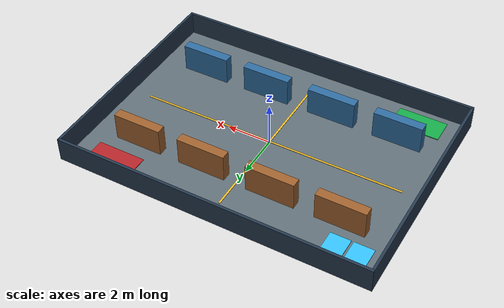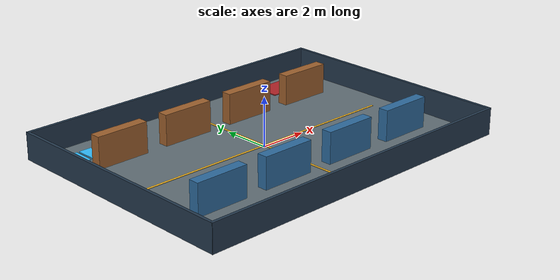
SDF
<?xml version="1.0"?>
<sdf version="1.6">
  <world name="rms_smart_warehouse">
    <plugin filename="gz-sim-physics-system" name="gz::sim::systems::Physics"/>
    <plugin filename="gz-sim-user-commands-system" name="gz::sim::systems::UserCommands"/>
    <plugin filename="gz-sim-scene-broadcaster-system" name="gz::sim::systems::SceneBroadcaster"/>

    <light name="sun" type="directional">
      <pose>0 0 10 0 0 0</pose>
      <cast_shadows>true</cast_shadows>
      <intensity>1</intensity>
      <direction>-0.5 0.1 -0.9</direction>
      <diffuse>0.8 0.8 0.8 1</diffuse>
      <specular>0.2 0.2 0.2 1</specular>
    </light>

    <model name="warehouse_floor">
      <static>true</static>
      <link name="floor_link">
        <collision name="floor_collision">
          <geometry>
            <box><size>14 10 0.08</size></box>
          </geometry>
        </collision>
        <visual name="floor_visual">
          <geometry>
            <box><size>14 10 0.08</size></box>
          </geometry>
          <material>
            <ambient>0.18 0.22 0.25 1</ambient>
            <diffuse>0.38 0.43 0.46 1</diffuse>
          </material>
        </visual>
      </link>
    </model>

    <model name="north_wall">
      <pose>0 5.05 0.55 0 0 0</pose>
      <static>true</static>
      <link name="link">
        <collision name="collision"><geometry><box><size>14.2 0.12 1.1</size></box></geometry></collision>
        <visual name="visual"><geometry><box><size>14.2 0.12 1.1</size></box></geometry><material><ambient>0.1 0.16 0.22 1</ambient><diffuse>0.14 0.22 0.30 1</diffuse></material></visual>
      </link>
    </model>
    <model name="south_wall">
      <pose>0 -5.05 0.55 0 0 0</pose>
      <static>true</static>
      <link name="link">
        <collision name="collision"><geometry><box><size>14.2 0.12 1.1</size></box></geometry></collision>
        <visual name="visual"><geometry><box><size>14.2 0.12 1.1</size></box></geometry><material><ambient>0.1 0.16 0.22 1</ambient><diffuse>0.14 0.22 0.30 1</diffuse></material></visual>
      </link>
    </model>
    <model name="west_wall">
      <pose>-7.05 0 0.55 0 0 0</pose>
      <static>true</static>
      <link name="link">
        <collision name="collision"><geometry><box><size>0.12 10.2 1.1</size></box></geometry></collision>
        <visual name="visual"><geometry><box><size>0.12 10.2 1.1</size></box></geometry><material><ambient>0.1 0.16 0.22 1</ambient><diffuse>0.14 0.22 0.30 1</diffuse></material></visual>
      </link>
    </model>
    <model name="east_wall">
      <pose>7.05 0 0.55 0 0 0</pose>
      <static>true</static>
      <link name="link">
        <collision name="collision"><geometry><box><size>0.12 10.2 1.1</size></box></geometry></collision>
        <visual name="visual"><geometry><box><size>0.12 10.2 1.1</size></box></geometry><material><ambient>0.1 0.16 0.22 1</ambient><diffuse>0.14 0.22 0.30 1</diffuse></material></visual>
      </link>
    </model>

    <!-- Aisle markers -->
    <model name="main_aisle">
      <pose>0 0 0.055 0 0 0</pose>
      <static>true</static>
      <link name="link">
        <visual name="visual"><geometry><box><size>12.2 0.08 0.02</size></box></geometry><material><ambient>1 0.75 0.15 1</ambient><diffuse>1 0.75 0.15 1</diffuse></material></visual>
      </link>
    </model>
    <model name="cross_aisle">
      <pose>0 0 0.056 0 0 0</pose>
      <static>true</static>
      <link name="link">
        <visual name="visual"><geometry><box><size>0.08 8.2 0.02</size></box></geometry><material><ambient>1 0.75 0.15 1</ambient><diffuse>1 0.75 0.15 1</diffuse></material></visual>
      </link>
    </model>

    <!-- Shelves -->
    <model name="shelf_a1"><pose>-4.7 2.7 0.65 0 0 0</pose><static>true</static><link name="link"><collision name="collision"><geometry><box><size>2.2 0.42 1.3</size></box></geometry></collision><visual name="visual"><geometry><box><size>2.2 0.42 1.3</size></box></geometry><material><ambient>0.52 0.32 0.16 1</ambient><diffuse>0.62 0.38 0.18 1</diffuse></material></visual></link></model>
    <model name="shelf_a2"><pose>-1.6 2.7 0.65 0 0 0</pose><static>true</static><link name="link"><collision name="collision"><geometry><box><size>2.2 0.42 1.3</size></box></geometry></collision><visual name="visual"><geometry><box><size>2.2 0.42 1.3</size></box></geometry><material><ambient>0.52 0.32 0.16 1</ambient><diffuse>0.62 0.38 0.18 1</diffuse></material></visual></link></model>
    <model name="shelf_a3"><pose>1.6 2.7 0.65 0 0 0</pose><static>true</static><link name="link"><collision name="collision"><geometry><box><size>2.2 0.42 1.3</size></box></geometry></collision><visual name="visual"><geometry><box><size>2.2 0.42 1.3</size></box></geometry><material><ambient>0.52 0.32 0.16 1</ambient><diffuse>0.62 0.38 0.18 1</diffuse></material></visual></link></model>
    <model name="shelf_a4"><pose>4.7 2.7 0.65 0 0 0</pose><static>true</static><link name="link"><collision name="collision"><geometry><box><size>2.2 0.42 1.3</size></box></geometry></collision><visual name="visual"><geometry><box><size>2.2 0.42 1.3</size></box></geometry><material><ambient>0.52 0.32 0.16 1</ambient><diffuse>0.62 0.38 0.18 1</diffuse></material></visual></link></model>
    <model name="shelf_b1"><pose>-4.7 -2.7 0.65 0 0 0</pose><static>true</static><link name="link"><collision name="collision"><geometry><box><size>2.2 0.42 1.3</size></box></geometry></collision><visual name="visual"><geometry><box><size>2.2 0.42 1.3</size></box></geometry><material><ambient>0.18 0.36 0.52 1</ambient><diffuse>0.18 0.42 0.62 1</diffuse></material></visual></link></model>
    <model name="shelf_b2"><pose>-1.6 -2.7 0.65 0 0 0</pose><static>true</static><link name="link"><collision name="collision"><geometry><box><size>2.2 0.42 1.3</size></box></geometry></collision><visual name="visual"><geometry><box><size>2.2 0.42 1.3</size></box></geometry><material><ambient>0.18 0.36 0.52 1</ambient><diffuse>0.18 0.42 0.62 1</diffuse></material></visual></link></model>
    <model name="shelf_b3"><pose>1.6 -2.7 0.65 0 0 0</pose><static>true</static><link name="link"><collision name="collision"><geometry><box><size>2.2 0.42 1.3</size></box></geometry></collision><visual name="visual"><geometry><box><size>2.2 0.42 1.3</size></box></geometry><material><ambient>0.18 0.36 0.52 1</ambient><diffuse>0.18 0.42 0.62 1</diffuse></material></visual></link></model>
    <model name="shelf_b4"><pose>4.7 -2.7 0.65 0 0 0</pose><static>true</static><link name="link"><collision name="collision"><geometry><box><size>2.2 0.42 1.3</size></box></geometry></collision><visual name="visual"><geometry><box><size>2.2 0.42 1.3</size></box></geometry><material><ambient>0.18 0.36 0.52 1</ambient><diffuse>0.18 0.42 0.62 1</diffuse></material></visual></link></model>

    <!-- Pallets and charging pads -->
    <model name="loading_zone"><pose>-5.1 -4.1 0.08 0 0 0</pose><static>true</static><link name="link"><visual name="visual"><geometry><box><size>2.2 1.1 0.04</size></box></geometry><material><ambient>0.05 0.55 0.22 1</ambient><diffuse>0.08 0.66 0.28 1</diffuse></material></visual></link></model>
    <model name="shipping_zone"><pose>5.1 4.1 0.08 0 0 0</pose><static>true</static><link name="link"><visual name="visual"><geometry><box><size>2.2 1.1 0.04</size></box></geometry><material><ambient>0.55 0.10 0.12 1</ambient><diffuse>0.70 0.14 0.16 1</diffuse></material></visual></link></model>
    <model name="charging_pad_1"><pose>-6.0 3.8 0.08 0 0 0</pose><static>true</static><link name="link"><visual name="visual"><geometry><box><size>0.9 0.9 0.04</size></box></geometry><material><ambient>0.2 0.75 1 1</ambient><diffuse>0.2 0.75 1 1</diffuse></material></visual></link></model>
    <model name="charging_pad_2"><pose>-5.0 3.8 0.08 0 0 0</pose><static>true</static><link name="link"><visual name="visual"><geometry><box><size>0.9 0.9 0.04</size></box></geometry><material><ambient>0.2 0.75 1 1</ambient><diffuse>0.2 0.75 1 1</diffuse></material></visual></link></model>
  </world>
</sdf>
